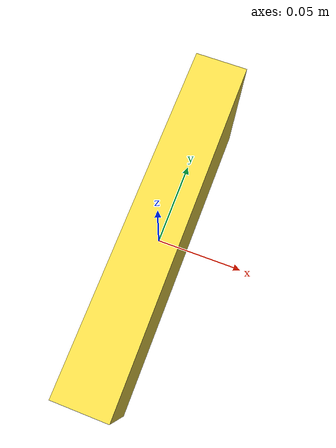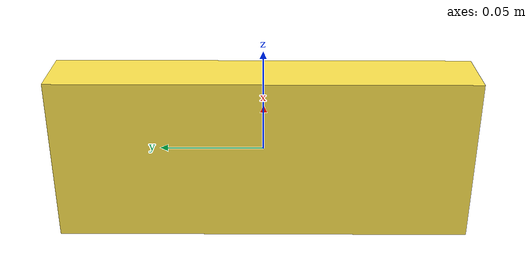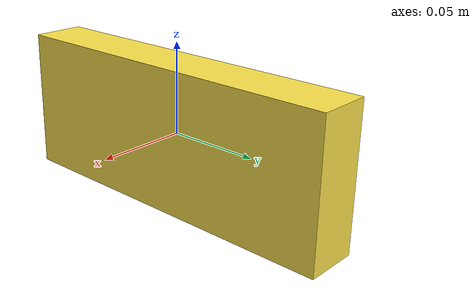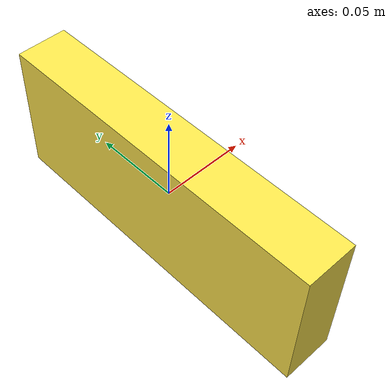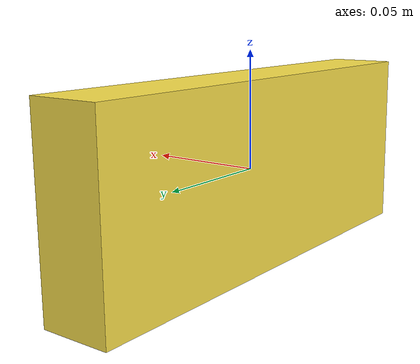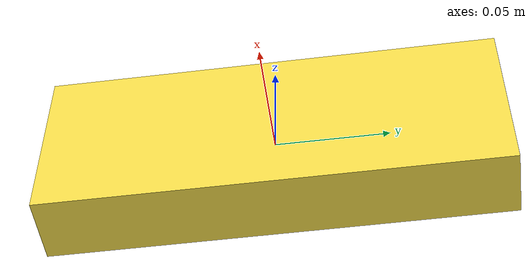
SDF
<?xml version="1.0" ?>
<sdf version="1.7">
  <model name="garlic_bread">
    <link name="link">

      <inertial>
        <mass>0.2</mass>
        <inertia>
          <ixx>0.000773</ixx>
          <iyy>0.000122</iyy>
          <izz>0.000682</izz>
          <ixy>0</ixy><ixz>0</ixz><iyz>0</iyz>
        </inertia>
      </inertial>

      <collision name="collision">
        <geometry>
          <box><size>0.03 0.20 0.08</size></box>
        </geometry>
        <surface>
          <friction><ode><mu>0.6</mu><mu2>0.6</mu2></ode></friction>
        </surface>
      </collision>

      <visual name="visual">
        <geometry>
          <box><size>0.03 0.20 0.08</size></box>
        </geometry>
        <material>
          <ambient>1.0 0.85 0.2 1</ambient>
          <diffuse>1.0 0.90 0.3 1</diffuse>
        </material>
      </visual>

    </link>
  </model>
</sdf>
